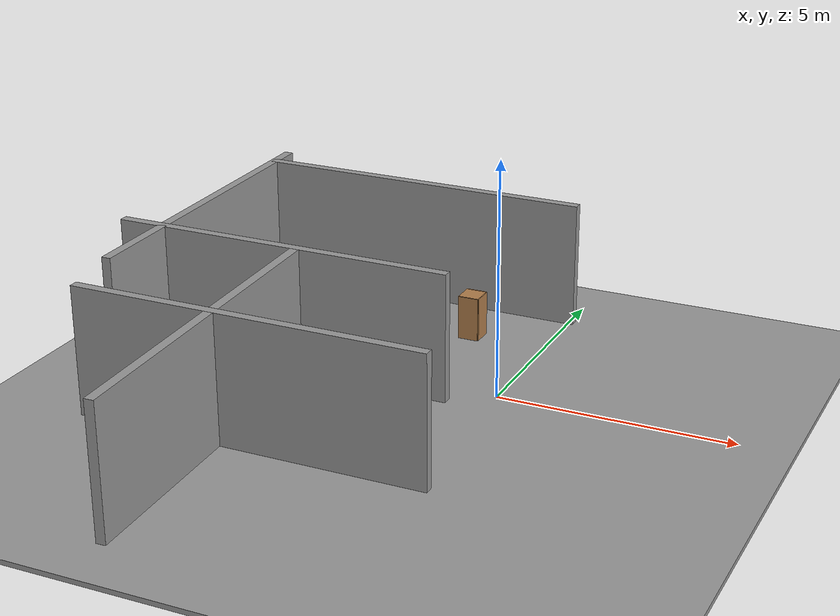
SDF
<sdf version="1.6">
 <world name="default">
  <model name="ground_plane">
   <static>1</static>
   <link name="link">
    <collision name="collision">
     <geometry><plane><normal>0 0 1</normal><size>100 100</size></plane></geometry>
     <surface><friction><ode><mu>100</mu><mu2>50</mu2></ode></friction></surface>
    </collision>
    <visual name="visual">
     <cast_shadows>0</cast_shadows>
     <geometry><plane><normal>0 0 1</normal><size>100 100</size></plane></geometry>
     <material>
      <script><uri>file://media/materials/scripts/gazebo.material</uri><name>Gazebo/Grey</name></script>
     </material>
    </visual>
   </link>
  </model>
  <model name="cabinet">
   <static>1</static>
   <link name="cabinet_bottom_plate">
    <inertial>
     <pose>0 0 -1 0 -0 0</pose>
     <inertia><ixx>2.05</ixx><ixy>0</ixy><ixz>0</ixz><iyy>2.05</iyy><iyz>0</iyz><izz>2.05</izz></inertia>
     <mass>25</mass>
    </inertial>
    <collision name="cabinet_bottom_plate_geom">
     <pose>0 0 0.01 0 -0 0</pose>
     <geometry><box><size>0.45 0.45 0.02</size></box></geometry>
    </collision>
    <visual name="cabinet_bottom_plate_geom_visual">
     <pose>0 0 0.01 0 -0 0</pose>
     <geometry><box><size>0.45 0.45 0.02</size></box></geometry>
     <material>
      <script><uri>file://media/materials/scripts/gazebo.material</uri><name>Gazebo/Wood</name></script>
     </material>
    </visual>
    <collision name="cabinet_bottom_plate_geom_cabinet_back_plate">
     <pose>0.235 0 0.51 0 -0 0</pose>
     <geometry><box><size>0.02 0.45 1.02</size></box></geometry>
    </collision>
    <visual name="cabinet_bottom_plate_geom_cabinet_back_plate_visual">
     <pose>0.235 0 0.51 0 -0 0</pose>
     <geometry><box><size>0.02 0.45 1.02</size></box></geometry>
     <material>
      <script><uri>file://media/materials/scripts/gazebo.material</uri><name>Gazebo/Wood</name></script>
     </material>
    </visual>
    <collision name="cabinet_bottom_plate_geom_cabinet_left_plate">
     <pose>0 0.235 0.51 0 -0 0</pose>
     <geometry><box><size>0.45 0.02 1.02</size></box></geometry>
    </collision>
    <visual name="cabinet_bottom_plate_geom_cabinet_left_plate_visual">
     <pose>0 0.235 0.51 0 -0 0</pose>
     <geometry><box><size>0.45 0.02 1.02</size></box></geometry>
     <material>
      <script><uri>file://media/materials/scripts/gazebo.material</uri><name>Gazebo/Wood</name></script>
     </material>
    </visual>
    <collision name="cabinet_bottom_plate_geom_cabinet_middle_plate">
     <pose>0 0 0.51 0 -0 0</pose>
     <geometry><box><size>0.45 0.45 0.02</size></box></geometry>
    </collision>
    <visual name="cabinet_bottom_plate_geom_cabinet_middle_plate_visual">
     <pose>0 0 0.51 0 -0 0</pose>
     <geometry><box><size>0.45 0.45 0.02</size></box></geometry>
     <material>
      <script><uri>file://media/materials/scripts/gazebo.material</uri><name>Gazebo/Wood</name></script>
     </material>
    </visual>
    <collision name="cabinet_bottom_plate_geom_cabinet_right_plate">
     <pose>0 -0.235 0.51 0 -0 0</pose>
     <geometry><box><size>0.45 0.02 1.02</size></box></geometry>
    </collision>
    <visual name="cabinet_bottom_plate_geom_cabinet_right_plate_visual">
     <pose>0 -0.235 0.51 0 -0 0</pose>
     <geometry><box><size>0.45 0.02 1.02</size></box></geometry>
     <material>
      <script><uri>file://media/materials/scripts/gazebo.material</uri><name>Gazebo/Wood</name></script>
     </material>
    </visual>
    <collision name="cabinet_bottom_plate_geom_cabinet_top_plate">
     <pose>0 0 1.01 0 -0 0</pose>
     <geometry><box><size>0.45 0.45 0.02</size></box></geometry>
    </collision>
    <visual name="cabinet_bottom_plate_geom_cabinet_top_plate_visual">
     <pose>0 0 1.01 0 -0 0</pose>
     <geometry><box><size>0.45 0.45 0.02</size></box></geometry>
     <material>
      <script><uri>file://media/materials/scripts/gazebo.material</uri><name>Gazebo/Wood</name></script>
     </material>
    </visual>
   </link>
   <pose>-1.9079 -2.32451 0 0 -0 0</pose>
  </model>
  <model name="grey_wall_1">
   <static>1</static>
   <link name="link">
    <pose>0 0 1.4 0 -0 0</pose>
    <collision name="collision"><geometry><box><size>7.5 0.2 2.8</size></box></geometry></collision>
    <visual name="visual">
     <cast_shadows>0</cast_shadows>
     <geometry><box><size>7.5 0.2 2.8</size></box></geometry>
     <material>
      <script>
       <uri>model://grey_wall/materials/scripts</uri>
       <uri>model://grey_wall/materials/textures</uri>
       <name>vrc/grey_wall</name>
      </script>
     </material>
    </visual>
   </link>
   <pose>-3.9921 -4.5079 0 0 0 -1.53351</pose>
  </model>
  <model name="ground_plane_1">
   <static>1</static>
   <link name="link">
    <collision name="collision">
     <geometry><plane><normal>0 0 1</normal><size>100 100</size></plane></geometry>
     <surface><friction><ode><mu>100</mu><mu2>50</mu2></ode></friction></surface>
    </collision>
    <visual name="visual">
     <cast_shadows>0</cast_shadows>
     <geometry><plane><normal>0 0 1</normal><size>100 100</size></plane></geometry>
     <material>
      <script><uri>file://media/materials/scripts/gazebo.material</uri><name>Gazebo/Grey</name></script>
     </material>
    </visual>
   </link>
   <pose>-4.48294 -5.06822 0 0 -0 0</pose>
  </model>
  <model name="grey_wall_3">
   <static>1</static>
   <link name="link">
    <pose>0 0 1.4 0 -0 0</pose>
    <collision name="collision"><geometry><box><size>7.5 0.2 2.8</size></box></geometry></collision>
    <visual name="visual">
     <cast_shadows>0</cast_shadows>
     <geometry><box><size>7.5 0.2 2.8</size></box></geometry>
     <material>
      <script>
       <uri>model://grey_wall/materials/scripts</uri>
       <uri>model://grey_wall/materials/textures</uri>
       <name>vrc/grey_wall</name>
      </script>
     </material>
    </visual>
   </link>
   <pose>-3.3181 -4.18526 0 0 -0 0</pose>
  </model>
  <model name="grey_wall_4">
   <static>1</static>
   <link name="link">
    <pose>0 0 1.4 0 -0 0</pose>
    <collision name="collision"><geometry><box><size>7.5 0.2 2.8</size></box></geometry></collision>
    <visual name="visual">
     <cast_shadows>0</cast_shadows>
     <geometry><box><size>7.5 0.2 2.8</size></box></geometry>
     <material>
      <script>
       <uri>model://grey_wall/materials/scripts</uri>
       <uri>model://grey_wall/materials/textures</uri>
       <name>vrc/grey_wall</name>
      </script>
     </material>
    </visual>
   </link>
   <pose>-4.54023 -0.691362 0 0 -0 0</pose>
  </model>
  <model name="grey_wall_6">
   <static>1</static>
   <link name="link">
    <pose>0 0 1.4 0 -0 0</pose>
    <collision name="collision"><geometry><box><size>7.5 0.2 2.8</size></box></geometry></collision>
    <visual name="visual">
     <cast_shadows>0</cast_shadows>
     <geometry><box><size>7.5 0.2 2.8</size></box></geometry>
     <material>
      <script>
       <uri>model://grey_wall/materials/scripts</uri>
       <uri>model://grey_wall/materials/textures</uri>
       <name>vrc/grey_wall</name>
      </script>
     </material>
    </visual>
   </link>
   <pose>-7.30576 0.965203 0 0 -0 1.57461</pose>
  </model>
  <model name="grey_wall_7">
   <static>1</static>
   <link name="link">
    <pose>0 0 1.4 0 -0 0</pose>
    <collision name="collision"><geometry><box><size>7.5 0.2 2.8</size></box></geometry></collision>
    <visual name="visual">
     <cast_shadows>0</cast_shadows>
     <geometry><box><size>7.5 0.2 2.8</size></box></geometry>
     <material>
      <script>
       <uri>model://grey_wall/materials/scripts</uri>
       <uri>model://grey_wall/materials/textures</uri>
       <name>vrc/grey_wall</name>
      </script>
     </material>
    </visual>
   </link>
   <pose>-3.60515 4.06372 0 0 -0 0</pose>
  </model>
  <model name="cabinet_2">
   <static>1</static>
   <link name="cabinet_bottom_plate">
    <inertial>
     <pose>0 0 -1 0 -0 0</pose>
     <inertia><ixx>2.05</ixx><ixy>0</ixy><ixz>0</ixz><iyy>2.05</iyy><iyz>0</iyz><izz>2.05</izz></inertia>
     <mass>25</mass>
    </inertial>
    <collision name="cabinet_bottom_plate_geom">
     <pose>0 0 0.01 0 -0 0</pose>
     <geometry><box><size>0.45 0.45 0.02</size></box></geometry>
    </collision>
    <visual name="cabinet_bottom_plate_geom_visual">
     <pose>0 0 0.01 0 -0 0</pose>
     <geometry><box><size>0.45 0.45 0.02</size></box></geometry>
     <material>
      <script><uri>file://media/materials/scripts/gazebo.material</uri><name>Gazebo/Wood</name></script>
     </material>
    </visual>
    <collision name="cabinet_bottom_plate_geom_cabinet_back_plate">
     <pose>0.235 0 0.51 0 -0 0</pose>
     <geometry><box><size>0.02 0.45 1.02</size></box></geometry>
    </collision>
    <visual name="cabinet_bottom_plate_geom_cabinet_back_plate_visual">
     <pose>0.235 0 0.51 0 -0 0</pose>
     <geometry><box><size>0.02 0.45 1.02</size></box></geometry>
     <material>
      <script><uri>file://media/materials/scripts/gazebo.material</uri><name>Gazebo/Wood</name></script>
     </material>
    </visual>
    <collision name="cabinet_bottom_plate_geom_cabinet_left_plate">
     <pose>0 0.235 0.51 0 -0 0</pose>
     <geometry><box><size>0.45 0.02 1.02</size></box></geometry>
    </collision>
    <visual name="cabinet_bottom_plate_geom_cabinet_left_plate_visual">
     <pose>0 0.235 0.51 0 -0 0</pose>
     <geometry><box><size>0.45 0.02 1.02</size></box></geometry>
     <material>
      <script><uri>file://media/materials/scripts/gazebo.material</uri><name>Gazebo/Wood</name></script>
     </material>
    </visual>
    <collision name="cabinet_bottom_plate_geom_cabinet_middle_plate">
     <pose>0 0 0.51 0 -0 0</pose>
     <geometry><box><size>0.45 0.45 0.02</size></box></geometry>
    </collision>
    <visual name="cabinet_bottom_plate_geom_cabinet_middle_plate_visual">
     <pose>0 0 0.51 0 -0 0</pose>
     <geometry><box><size>0.45 0.45 0.02</size></box></geometry>
     <material>
      <script><uri>file://media/materials/scripts/gazebo.material</uri><name>Gazebo/Wood</name></script>
     </material>
    </visual>
    <collision name="cabinet_bottom_plate_geom_cabinet_right_plate">
     <pose>0 -0.235 0.51 0 -0 0</pose>
     <geometry><box><size>0.45 0.02 1.02</size></box></geometry>
    </collision>
    <visual name="cabinet_bottom_plate_geom_cabinet_right_plate_visual">
     <pose>0 -0.235 0.51 0 -0 0</pose>
     <geometry><box><size>0.45 0.02 1.02</size></box></geometry>
     <material>
      <script><uri>file://media/materials/scripts/gazebo.material</uri><name>Gazebo/Wood</name></script>
     </material>
    </visual>
    <collision name="cabinet_bottom_plate_geom_cabinet_top_plate">
     <pose>0 0 1.01 0 -0 0</pose>
     <geometry><box><size>0.45 0.45 0.02</size></box></geometry>
    </collision>
    <visual name="cabinet_bottom_plate_geom_cabinet_top_plate_visual">
     <pose>0 0 1.01 0 -0 0</pose>
     <geometry><box><size>0.45 0.45 0.02</size></box></geometry>
     <material>
      <script><uri>file://media/materials/scripts/gazebo.material</uri><name>Gazebo/Wood</name></script>
     </material>
    </visual>
   </link>
   <pose>-5.33502 0.987603 0 0 -0 0</pose>
  </model>
  <model name="cabinet_3">
   <static>1</static>
   <link name="cabinet_bottom_plate">
    <inertial>
     <pose>0 0 -1 0 -0 0</pose>
     <inertia><ixx>2.05</ixx><ixy>0</ixy><ixz>0</ixz><iyy>2.05</iyy><iyz>0</iyz><izz>2.05</izz></inertia>
     <mass>25</mass>
    </inertial>
    <collision name="cabinet_bottom_plate_geom">
     <pose>0 0 0.01 0 -0 0</pose>
     <geometry><box><size>0.45 0.45 0.02</size></box></geometry>
    </collision>
    <visual name="cabinet_bottom_plate_geom_visual">
     <pose>0 0 0.01 0 -0 0</pose>
     <geometry><box><size>0.45 0.45 0.02</size></box></geometry>
     <material>
      <script><uri>file://media/materials/scripts/gazebo.material</uri><name>Gazebo/Wood</name></script>
     </material>
    </visual>
    <collision name="cabinet_bottom_plate_geom_cabinet_back_plate">
     <pose>0.235 0 0.51 0 -0 0</pose>
     <geometry><box><size>0.02 0.45 1.02</size></box></geometry>
    </collision>
    <visual name="cabinet_bottom_plate_geom_cabinet_back_plate_visual">
     <pose>0.235 0 0.51 0 -0 0</pose>
     <geometry><box><size>0.02 0.45 1.02</size></box></geometry>
     <material>
      <script><uri>file://media/materials/scripts/gazebo.material</uri><name>Gazebo/Wood</name></script>
     </material>
    </visual>
    <collision name="cabinet_bottom_plate_geom_cabinet_left_plate">
     <pose>0 0.235 0.51 0 -0 0</pose>
     <geometry><box><size>0.45 0.02 1.02</size></box></geometry>
    </collision>
    <visual name="cabinet_bottom_plate_geom_cabinet_left_plate_visual">
     <pose>0 0.235 0.51 0 -0 0</pose>
     <geometry><box><size>0.45 0.02 1.02</size></box></geometry>
     <material>
      <script><uri>file://media/materials/scripts/gazebo.material</uri><name>Gazebo/Wood</name></script>
     </material>
    </visual>
    <collision name="cabinet_bottom_plate_geom_cabinet_middle_plate">
     <pose>0 0 0.51 0 -0 0</pose>
     <geometry><box><size>0.45 0.45 0.02</size></box></geometry>
    </collision>
    <visual name="cabinet_bottom_plate_geom_cabinet_middle_plate_visual">
     <pose>0 0 0.51 0 -0 0</pose>
     <geometry><box><size>0.45 0.45 0.02</size></box></geometry>
     <material>
      <script><uri>file://media/materials/scripts/gazebo.material</uri><name>Gazebo/Wood</name></script>
     </material>
    </visual>
    <collision name="cabinet_bottom_plate_geom_cabinet_right_plate">
     <pose>0 -0.235 0.51 0 -0 0</pose>
     <geometry><box><size>0.45 0.02 1.02</size></box></geometry>
    </collision>
    <visual name="cabinet_bottom_plate_geom_cabinet_right_plate_visual">
     <pose>0 -0.235 0.51 0 -0 0</pose>
     <geometry><box><size>0.45 0.02 1.02</size></box></geometry>
     <material>
      <script><uri>file://media/materials/scripts/gazebo.material</uri><name>Gazebo/Wood</name></script>
     </material>
    </visual>
    <collision name="cabinet_bottom_plate_geom_cabinet_top_plate">
     <pose>0 0 1.01 0 -0 0</pose>
     <geometry><box><size>0.45 0.45 0.02</size></box></geometry>
    </collision>
    <visual name="cabinet_bottom_plate_geom_cabinet_top_plate_visual">
     <pose>0 0 1.01 0 -0 0</pose>
     <geometry><box><size>0.45 0.45 0.02</size></box></geometry>
     <material>
      <script><uri>file://media/materials/scripts/gazebo.material</uri><name>Gazebo/Wood</name></script>
     </material>
    </visual>
   </link>
   <pose>-1.63871 2.50474 0 0 -0 0</pose>
  </model>
  <model name="bookshelf">
   <static>1</static>
   <link name="link">
    <inertial><mass>1</mass></inertial>
    <collision name="back">
     <pose>0 0.005 0.6 0 -0 0</pose>
     <geometry><box><size>0.9 0.01 1.2</size></box></geometry>
    </collision>
    <visual name="visual1">
     <pose>0 0.005 0.6 0 -0 0</pose>
     <geometry><box><size>0.9 0.01 1.2</size></box></geometry>
     <material>
      <script><uri>file://media/materials/scripts/gazebo.material</uri><name>Gazebo/Wood</name></script>
     </material>
    </visual>
    <collision name="left_side">
     <pose>0.45 -0.195 0.6 0 -0 0</pose>
     <geometry><box><size>0.02 0.4 1.2</size></box></geometry>
    </collision>
    <visual name="visual2">
     <pose>0.45 -0.195 0.6 0 -0 0</pose>
     <geometry><box><size>0.02 0.4 1.2</size></box></geometry>
     <material>
      <script><uri>file://media/materials/scripts/gazebo.material</uri><name>Gazebo/Wood</name></script>
     </material>
    </visual>
    <collision name="right_side">
     <pose>-0.45 -0.195 0.6 0 -0 0</pose>
     <geometry><box><size>0.02 0.4 1.2</size></box></geometry>
    </collision>
    <visual name="visual3">
     <pose>-0.45 -0.195 0.6 0 -0 0</pose>
     <geometry><box><size>0.02 0.4 1.2</size></box></geometry>
     <material>
      <script><uri>file://media/materials/scripts/gazebo.material</uri><name>Gazebo/Wood</name></script>
     </material>
    </visual>
    <collision name="bottom">
     <pose>0 -0.195 0.03 0 -0 0</pose>
     <geometry><box><size>0.88 0.4 0.06</size></box></geometry>
    </collision>
    <visual name="visual4">
     <pose>0 -0.195 0.03 0 -0 0</pose>
     <geometry><box><size>0.88 0.4 0.06</size></box></geometry>
     <material>
      <script><uri>file://media/materials/scripts/gazebo.material</uri><name>Gazebo/Wood</name></script>
     </material>
    </visual>
    <collision name="top">
     <pose>0 -0.195 1.19 0 -0 0</pose>
     <geometry><box><size>0.88 0.4 0.02</size></box></geometry>
    </collision>
    <visual name="visual5">
     <pose>0 -0.195 1.19 0 -0 0</pose>
     <geometry><box><size>0.88 0.4 0.02</size></box></geometry>
     <material>
      <script><uri>file://media/materials/scripts/gazebo.material</uri><name>Gazebo/Wood</name></script>
     </material>
    </visual>
    <collision name="low_shelf">
     <pose>0 -0.195 0.43 0 -0 0</pose>
     <geometry><box><size>0.88 0.4 0.02</size></box></geometry>
    </collision>
    <visual name="visual6">
     <pose>0 -0.195 0.43 0 -0 0</pose>
     <geometry><box><size>0.88 0.4 0.02</size></box></geometry>
     <material>
      <script><uri>file://media/materials/scripts/gazebo.material</uri><name>Gazebo/Wood</name></script>
     </material>
    </visual>
    <collision name="high_shelf">
     <pose>0 -0.195 0.8 0 -0 0</pose>
     <geometry><box><size>0.88 0.4 0.02</size></box></geometry>
    </collision>
    <visual name="visual7">
     <pose>0 -0.195 0.8 0 -0 0</pose>
     <geometry><box><size>0.88 0.4 0.02</size></box></geometry>
     <material>
      <script><uri>file://media/materials/scripts/gazebo.material</uri><name>Gazebo/Wood</name></script>
     </material>
    </visual>
   </link>
   <pose>-2.11006 -0.160216 0 0 -0 0</pose>
  </model>
 </world>
</sdf>
